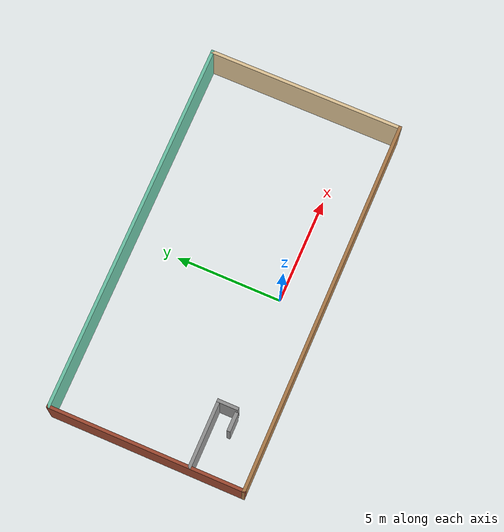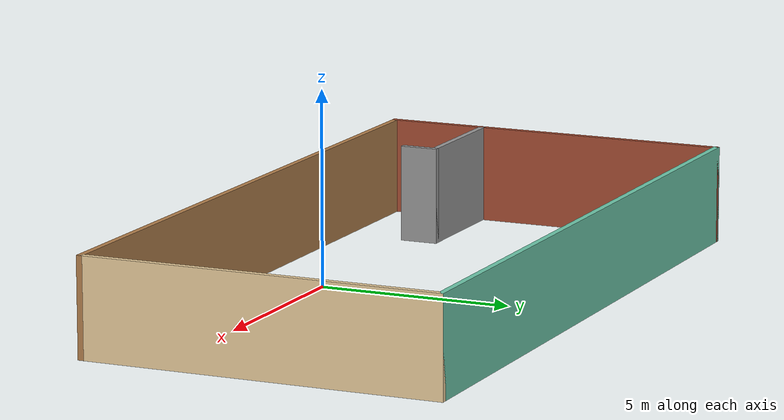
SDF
<?xml version='1.0'?>
<sdf version='1.6'>
  <model name='livingroom.world'>
    <pose frame=''>0.048378 2.57221 0 0 -0 0</pose>
    <link name='Door_0'>
      <collision name='Door_0_Collision'>
        <geometry>
          <box>
            <size>0.9 0.17 2</size>
          </box>
        </geometry>
        <pose frame=''>0 0 1 0 -0 0</pose>
      </collision>
      <visual name='Door_0_Visual'>
        <pose frame=''>0 0 1 0 -0 0</pose>
        <geometry>
          <box>
            <size>0.9 0.17 2</size>
          </box>
        </geometry>
        <material>
          <script>
            <uri>file://media/materials/scripts/gazebo.material</uri>
            <name>Gazebo/Grey</name>
          </script>
        </material>
      </visual>
      <pose frame=''>-6.21961 -2.9124 0 0 -0 0</pose>
    </link>
    <link name='Wall_10'>
      <collision name='Wall_10_Collision'>
        <geometry>
          <box>
            <size>3.25 0.15 2.5</size>
          </box>
        </geometry>
        <pose frame=''>0 0 1.25 0 -0 0</pose>
      </collision>
      <visual name='Wall_10_Visual'>
        <pose frame=''>0 0 1.25 0 -0 0</pose>
        <geometry>
          <box>
            <size>3.25 0.15 2.5</size>
          </box>
        </geometry>
        <material>
          <script>
            <uri>file://media/materials/scripts/gazebo.material</uri>
            <name>Gazebo/Grey</name>
          </script>
          <ambient>1 1 1 1</ambient>
        </material>
        <meta>
          <layer>0</layer>
        </meta>
      </visual>
      <pose frame=''>-7.23766 -2.03293 0 0 -0 0</pose>
    </link>
    <link name='Wall_11'>
      <collision name='Wall_11_Collision'>
        <geometry>
          <box>
            <size>1 0.15 2.5</size>
          </box>
        </geometry>
        <pose frame=''>0 0 1.25 0 -0 0</pose>
      </collision>
      <visual name='Wall_11_Visual'>
        <pose frame=''>0 0 1.25 0 -0 0</pose>
        <geometry>
          <box>
            <size>1 0.15 2.5</size>
          </box>
        </geometry>
        <material>
          <script>
            <uri>file://media/materials/scripts/gazebo.material</uri>
            <name>Gazebo/Grey</name>
          </script>
          <ambient>1 1 1 1</ambient>
        </material>
        <meta>
          <layer>0</layer>
        </meta>
      </visual>
      <pose frame=''>-5.68766 -2.45793 0 0 -0 -1.5708</pose>
    </link>
    <link name='Wall_5'>
      <collision name='Wall_5_Collision'>
        <geometry>
          <box>
            <size>9.25 0.15 2.5</size>
          </box>
        </geometry>
        <pose frame=''>0 0 1.25 0 -0 0</pose>
      </collision>
      <visual name='Wall_5_Visual'>
        <pose frame=''>0 0 1.25 0 -0 0</pose>
        <geometry>
          <box>
            <size>9.25 0.15 2.5</size>
          </box>
        </geometry>
        <material>
          <script>
            <uri>file://media/materials/scripts/gazebo.material</uri>
            <name>Gazebo/Bricks</name>
          </script>
          <ambient>1 1 1 1</ambient>
        </material>
        <meta>
          <layer>0</layer>
        </meta>
      </visual>
      <pose frame=''>-8.8 0 0 0 -0 1.5708</pose>
    </link>
    <link name='Wall_6'>
      <collision name='Wall_6_Collision'>
        <geometry>
          <box>
            <size>17.75 0.15 2.5</size>
          </box>
        </geometry>
        <pose frame=''>0 0 1.25 0 -0 0</pose>
      </collision>
      <visual name='Wall_6_Visual'>
        <pose frame=''>0 0 1.25 0 -0 0</pose>
        <geometry>
          <box>
            <size>17.75 0.15 2.5</size>
          </box>
        </geometry>
        <material>
          <script>
            <uri>file://media/materials/scripts/gazebo.material</uri>
            <name>Gazebo/Grey</name>
          </script>
          <ambient>0.435294 0.796078 0.67451 1</ambient>
        </material>
        <meta>
          <layer>0</layer>
        </meta>
      </visual>
      <pose frame=''>-0 4.55 0 0 -0 0</pose>
    </link>
    <link name='Wall_7'>
      <collision name='Wall_7_Collision'>
        <geometry>
          <box>
            <size>9.25 0.15 2.5</size>
          </box>
        </geometry>
        <pose frame=''>0 0 1.25 0 -0 0</pose>
      </collision>
      <visual name='Wall_7_Visual'>
        <pose frame=''>0 0 1.25 0 -0 0</pose>
        <geometry>
          <box>
            <size>9.25 0.15 2.5</size>
          </box>
        </geometry>
        <material>
          <script>
            <uri>file://media/materials/scripts/gazebo.material</uri>
            <name>Gazebo/Grey</name>
          </script>
          <ambient>0.921569 0.807843 0.615686 1</ambient>
        </material>
        <meta>
          <layer>0</layer>
        </meta>
      </visual>
      <pose frame=''>8.8 0 0 0 -0 -1.5708</pose>
    </link>
    <link name='Wall_8'>
      <collision name='Wall_8_Collision'>
        <geometry>
          <box>
            <size>17.75 0.15 2.5</size>
          </box>
        </geometry>
        <pose frame=''>0 0 1.25 0 -0 0</pose>
      </collision>
      <visual name='Wall_8_Visual'>
        <pose frame=''>0 0 1.25 0 -0 0</pose>
        <geometry>
          <box>
            <size>17.75 0.15 2.5</size>
          </box>
        </geometry>
        <material>
          <script>
            <uri>file://media/materials/scripts/gazebo.material</uri>
            <name>Gazebo/Wood</name>
          </script>
          <ambient>1 1 1 1</ambient>
        </material>
        <meta>
          <layer>0</layer>
        </meta>
      </visual>
      <pose frame=''>-0 -4.55 0 0 -0 3.14159</pose>
    </link>
    <static>1</static>
  </model>
</sdf>
